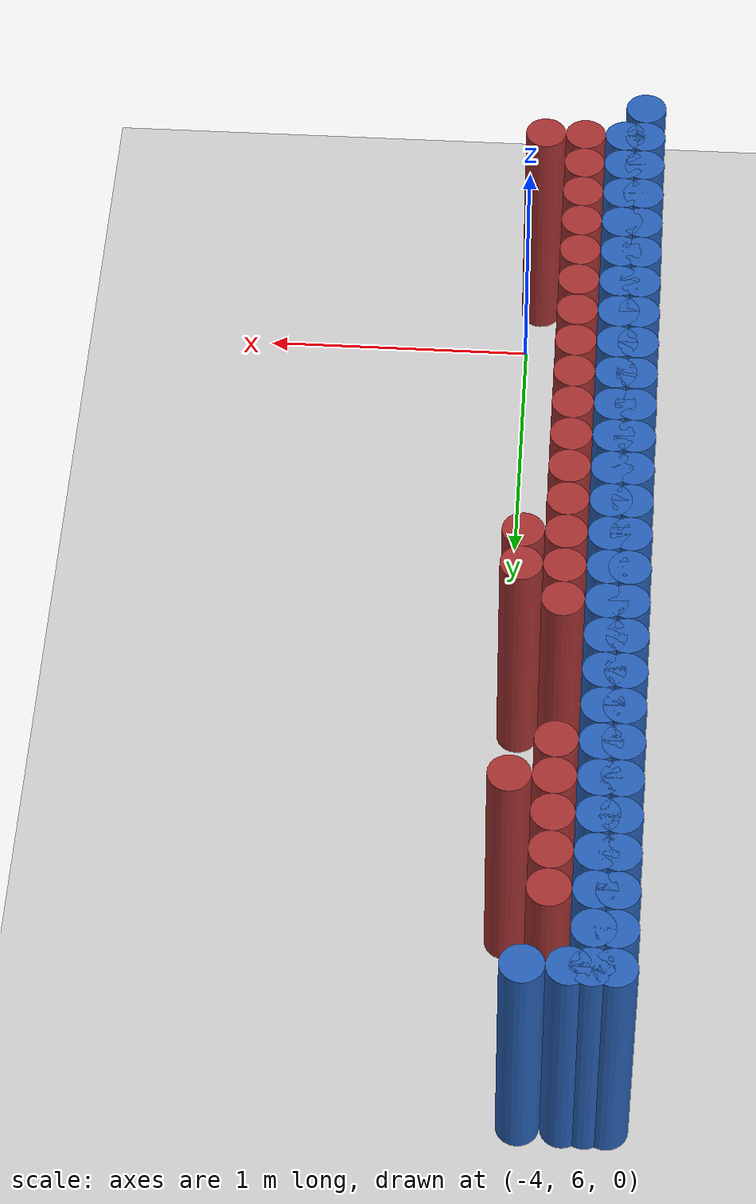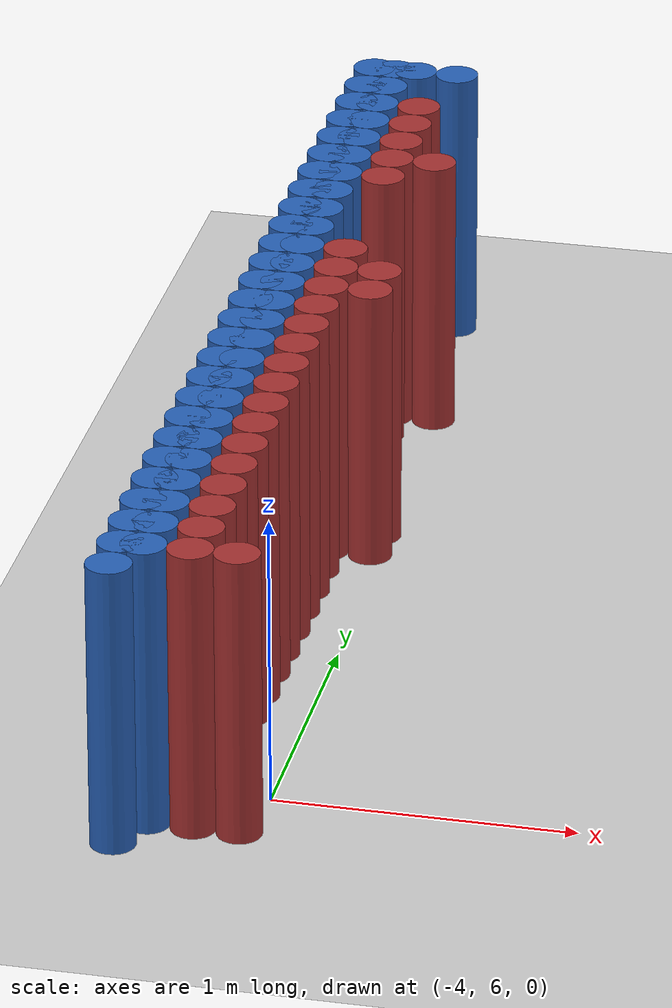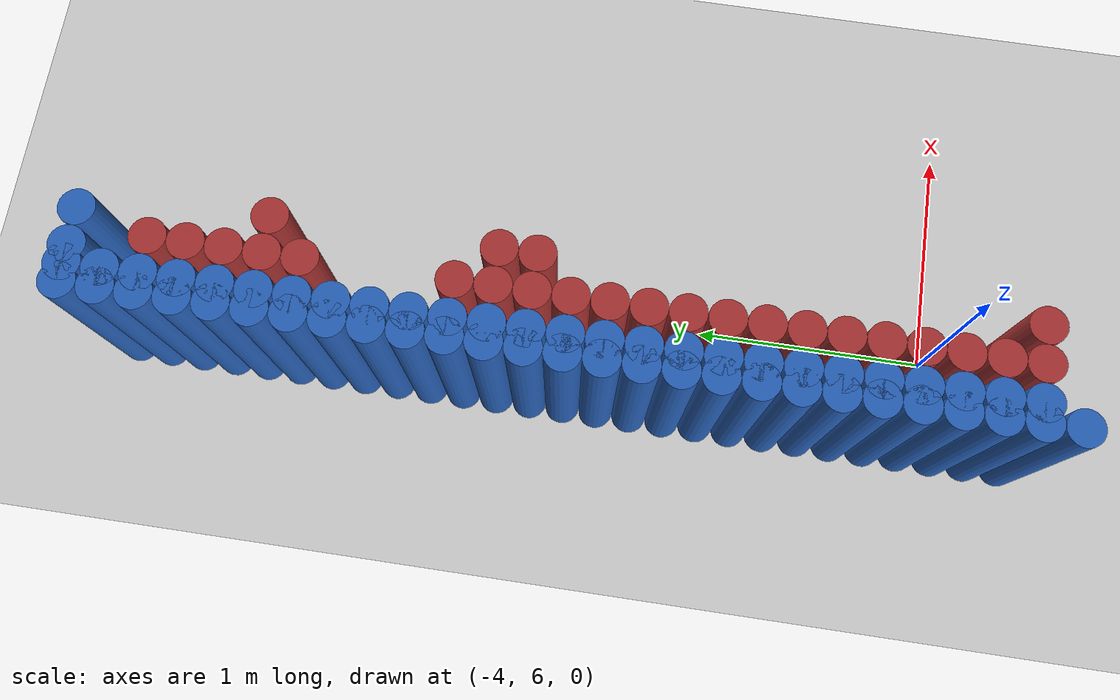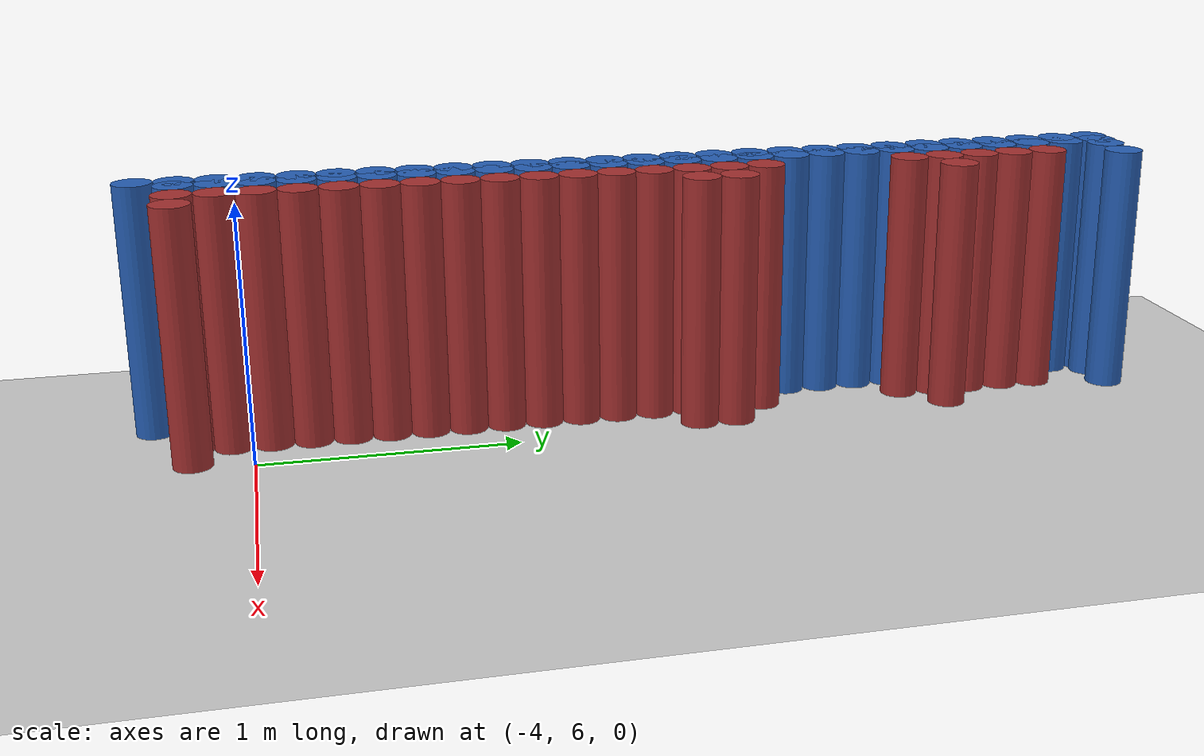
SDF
<sdf version="1.6">
 <world name="barn_world">
  <model name="ground_plane">
   <static>1</static>
   <link name="link">
    <collision name="collision">
     <geometry><plane><normal>0 0 1</normal><size>100 100</size></plane></geometry>
    </collision>
    <visual name="visual">
     <geometry><plane><normal>0 0 1</normal><size>100 100</size></plane></geometry>
     <material>
      <script><uri>file://media/materials/scripts/gazebo.material</uri><name>Gazebo/Grey</name></script>
     </material>
    </visual>
   </link>
  </model>
  <model name="unit_cylinder_130">
   <static>1</static>
   <pose>-4.3500 5.7750 0.5 0 0 0</pose>
   <link name="link">
    <collision name="collision">
     <geometry><cylinder><radius>0.075</radius><length>1</length></cylinder></geometry>
    </collision>
    <visual name="visual">
     <geometry><cylinder><radius>0.075</radius><length>1</length></cylinder></geometry>
     <material><ambient>0.152 0.379 0.72 1</ambient><diffuse>0.152 0.379 0.72 1</diffuse></material>
    </visual>
   </link>
  </model>
  <model name="unit_cylinder_131">
   <static>1</static>
   <pose>-4.3500 5.9250 0.5 0 0 0</pose>
   <link name="link">
    <collision name="collision">
     <geometry><cylinder><radius>0.075</radius><length>1</length></cylinder></geometry>
    </collision>
    <visual name="visual">
     <geometry><cylinder><radius>0.075</radius><length>1</length></cylinder></geometry>
     <material><ambient>0.152 0.379 0.72 1</ambient><diffuse>0.152 0.379 0.72 1</diffuse></material>
    </visual>
   </link>
  </model>
  <model name="unit_cylinder_132">
   <static>1</static>
   <pose>-4.3500 6.0750 0.5 0 0 0</pose>
   <link name="link">
    <collision name="collision">
     <geometry><cylinder><radius>0.075</radius><length>1</length></cylinder></geometry>
    </collision>
    <visual name="visual">
     <geometry><cylinder><radius>0.075</radius><length>1</length></cylinder></geometry>
     <material><ambient>0.152 0.379 0.72 1</ambient><diffuse>0.152 0.379 0.72 1</diffuse></material>
    </visual>
   </link>
  </model>
  <model name="unit_cylinder_133">
   <static>1</static>
   <pose>-4.3500 6.2250 0.5 0 0 0</pose>
   <link name="link">
    <collision name="collision">
     <geometry><cylinder><radius>0.075</radius><length>1</length></cylinder></geometry>
    </collision>
    <visual name="visual">
     <geometry><cylinder><radius>0.075</radius><length>1</length></cylinder></geometry>
     <material><ambient>0.152 0.379 0.72 1</ambient><diffuse>0.152 0.379 0.72 1</diffuse></material>
    </visual>
   </link>
  </model>
  <model name="unit_cylinder_134">
   <static>1</static>
   <pose>-4.3500 6.3750 0.5 0 0 0</pose>
   <link name="link">
    <collision name="collision">
     <geometry><cylinder><radius>0.075</radius><length>1</length></cylinder></geometry>
    </collision>
    <visual name="visual">
     <geometry><cylinder><radius>0.075</radius><length>1</length></cylinder></geometry>
     <material><ambient>0.152 0.379 0.72 1</ambient><diffuse>0.152 0.379 0.72 1</diffuse></material>
    </visual>
   </link>
  </model>
  <model name="unit_cylinder_135">
   <static>1</static>
   <pose>-4.3500 6.5250 0.5 0 0 0</pose>
   <link name="link">
    <collision name="collision">
     <geometry><cylinder><radius>0.075</radius><length>1</length></cylinder></geometry>
    </collision>
    <visual name="visual">
     <geometry><cylinder><radius>0.075</radius><length>1</length></cylinder></geometry>
     <material><ambient>0.152 0.379 0.72 1</ambient><diffuse>0.152 0.379 0.72 1</diffuse></material>
    </visual>
   </link>
  </model>
  <model name="unit_cylinder_136">
   <static>1</static>
   <pose>-4.3500 6.6750 0.5 0 0 0</pose>
   <link name="link">
    <collision name="collision">
     <geometry><cylinder><radius>0.075</radius><length>1</length></cylinder></geometry>
    </collision>
    <visual name="visual">
     <geometry><cylinder><radius>0.075</radius><length>1</length></cylinder></geometry>
     <material><ambient>0.152 0.379 0.72 1</ambient><diffuse>0.152 0.379 0.72 1</diffuse></material>
    </visual>
   </link>
  </model>
  <model name="unit_cylinder_137">
   <static>1</static>
   <pose>-4.3500 6.8250 0.5 0 0 0</pose>
   <link name="link">
    <collision name="collision">
     <geometry><cylinder><radius>0.075</radius><length>1</length></cylinder></geometry>
    </collision>
    <visual name="visual">
     <geometry><cylinder><radius>0.075</radius><length>1</length></cylinder></geometry>
     <material><ambient>0.152 0.379 0.72 1</ambient><diffuse>0.152 0.379 0.72 1</diffuse></material>
    </visual>
   </link>
  </model>
  <model name="unit_cylinder_138">
   <static>1</static>
   <pose>-4.3500 6.9750 0.5 0 0 0</pose>
   <link name="link">
    <collision name="collision">
     <geometry><cylinder><radius>0.075</radius><length>1</length></cylinder></geometry>
    </collision>
    <visual name="visual">
     <geometry><cylinder><radius>0.075</radius><length>1</length></cylinder></geometry>
     <material><ambient>0.152 0.379 0.72 1</ambient><diffuse>0.152 0.379 0.72 1</diffuse></material>
    </visual>
   </link>
  </model>
  <model name="unit_cylinder_139">
   <static>1</static>
   <pose>-4.3500 7.1250 0.5 0 0 0</pose>
   <link name="link">
    <collision name="collision">
     <geometry><cylinder><radius>0.075</radius><length>1</length></cylinder></geometry>
    </collision>
    <visual name="visual">
     <geometry><cylinder><radius>0.075</radius><length>1</length></cylinder></geometry>
     <material><ambient>0.152 0.379 0.72 1</ambient><diffuse>0.152 0.379 0.72 1</diffuse></material>
    </visual>
   </link>
  </model>
  <model name="unit_cylinder_140">
   <static>1</static>
   <pose>-4.3500 7.2750 0.5 0 0 0</pose>
   <link name="link">
    <collision name="collision">
     <geometry><cylinder><radius>0.075</radius><length>1</length></cylinder></geometry>
    </collision>
    <visual name="visual">
     <geometry><cylinder><radius>0.075</radius><length>1</length></cylinder></geometry>
     <material><ambient>0.152 0.379 0.72 1</ambient><diffuse>0.152 0.379 0.72 1</diffuse></material>
    </visual>
   </link>
  </model>
  <model name="unit_cylinder_141">
   <static>1</static>
   <pose>-4.3500 7.4250 0.5 0 0 0</pose>
   <link name="link">
    <collision name="collision">
     <geometry><cylinder><radius>0.075</radius><length>1</length></cylinder></geometry>
    </collision>
    <visual name="visual">
     <geometry><cylinder><radius>0.075</radius><length>1</length></cylinder></geometry>
     <material><ambient>0.152 0.379 0.72 1</ambient><diffuse>0.152 0.379 0.72 1</diffuse></material>
    </visual>
   </link>
  </model>
  <model name="unit_cylinder_142">
   <static>1</static>
   <pose>-4.3500 7.5750 0.5 0 0 0</pose>
   <link name="link">
    <collision name="collision">
     <geometry><cylinder><radius>0.075</radius><length>1</length></cylinder></geometry>
    </collision>
    <visual name="visual">
     <geometry><cylinder><radius>0.075</radius><length>1</length></cylinder></geometry>
     <material><ambient>0.152 0.379 0.72 1</ambient><diffuse>0.152 0.379 0.72 1</diffuse></material>
    </visual>
   </link>
  </model>
  <model name="unit_cylinder_143">
   <static>1</static>
   <pose>-4.3500 7.7250 0.5 0 0 0</pose>
   <link name="link">
    <collision name="collision">
     <geometry><cylinder><radius>0.075</radius><length>1</length></cylinder></geometry>
    </collision>
    <visual name="visual">
     <geometry><cylinder><radius>0.075</radius><length>1</length></cylinder></geometry>
     <material><ambient>0.152 0.379 0.72 1</ambient><diffuse>0.152 0.379 0.72 1</diffuse></material>
    </visual>
   </link>
  </model>
  <model name="unit_cylinder_144">
   <static>1</static>
   <pose>-4.3500 7.8750 0.5 0 0 0</pose>
   <link name="link">
    <collision name="collision">
     <geometry><cylinder><radius>0.075</radius><length>1</length></cylinder></geometry>
    </collision>
    <visual name="visual">
     <geometry><cylinder><radius>0.075</radius><length>1</length></cylinder></geometry>
     <material><ambient>0.152 0.379 0.72 1</ambient><diffuse>0.152 0.379 0.72 1</diffuse></material>
    </visual>
   </link>
  </model>
  <model name="unit_cylinder_145">
   <static>1</static>
   <pose>-4.3500 8.0250 0.5 0 0 0</pose>
   <link name="link">
    <collision name="collision">
     <geometry><cylinder><radius>0.075</radius><length>1</length></cylinder></geometry>
    </collision>
    <visual name="visual">
     <geometry><cylinder><radius>0.075</radius><length>1</length></cylinder></geometry>
     <material><ambient>0.152 0.379 0.72 1</ambient><diffuse>0.152 0.379 0.72 1</diffuse></material>
    </visual>
   </link>
  </model>
  <model name="unit_cylinder_146">
   <static>1</static>
   <pose>-4.3500 8.1750 0.5 0 0 0</pose>
   <link name="link">
    <collision name="collision">
     <geometry><cylinder><radius>0.075</radius><length>1</length></cylinder></geometry>
    </collision>
    <visual name="visual">
     <geometry><cylinder><radius>0.075</radius><length>1</length></cylinder></geometry>
     <material><ambient>0.152 0.379 0.72 1</ambient><diffuse>0.152 0.379 0.72 1</diffuse></material>
    </visual>
   </link>
  </model>
  <model name="unit_cylinder_147">
   <static>1</static>
   <pose>-4.3500 8.3250 0.5 0 0 0</pose>
   <link name="link">
    <collision name="collision">
     <geometry><cylinder><radius>0.075</radius><length>1</length></cylinder></geometry>
    </collision>
    <visual name="visual">
     <geometry><cylinder><radius>0.075</radius><length>1</length></cylinder></geometry>
     <material><ambient>0.152 0.379 0.72 1</ambient><diffuse>0.152 0.379 0.72 1</diffuse></material>
    </visual>
   </link>
  </model>
  <model name="unit_cylinder_148">
   <static>1</static>
   <pose>-4.3500 8.4750 0.5 0 0 0</pose>
   <link name="link">
    <collision name="collision">
     <geometry><cylinder><radius>0.075</radius><length>1</length></cylinder></geometry>
    </collision>
    <visual name="visual">
     <geometry><cylinder><radius>0.075</radius><length>1</length></cylinder></geometry>
     <material><ambient>0.152 0.379 0.72 1</ambient><diffuse>0.152 0.379 0.72 1</diffuse></material>
    </visual>
   </link>
  </model>
  <model name="unit_cylinder_149">
   <static>1</static>
   <pose>-4.3500 8.6250 0.5 0 0 0</pose>
   <link name="link">
    <collision name="collision">
     <geometry><cylinder><radius>0.075</radius><length>1</length></cylinder></geometry>
    </collision>
    <visual name="visual">
     <geometry><cylinder><radius>0.075</radius><length>1</length></cylinder></geometry>
     <material><ambient>0.152 0.379 0.72 1</ambient><diffuse>0.152 0.379 0.72 1</diffuse></material>
    </visual>
   </link>
  </model>
  <model name="unit_cylinder_150">
   <static>1</static>
   <pose>-4.3500 8.7750 0.5 0 0 0</pose>
   <link name="link">
    <collision name="collision">
     <geometry><cylinder><radius>0.075</radius><length>1</length></cylinder></geometry>
    </collision>
    <visual name="visual">
     <geometry><cylinder><radius>0.075</radius><length>1</length></cylinder></geometry>
     <material><ambient>0.152 0.379 0.72 1</ambient><diffuse>0.152 0.379 0.72 1</diffuse></material>
    </visual>
   </link>
  </model>
  <model name="unit_cylinder_151">
   <static>1</static>
   <pose>-4.3500 8.9250 0.5 0 0 0</pose>
   <link name="link">
    <collision name="collision">
     <geometry><cylinder><radius>0.075</radius><length>1</length></cylinder></geometry>
    </collision>
    <visual name="visual">
     <geometry><cylinder><radius>0.075</radius><length>1</length></cylinder></geometry>
     <material><ambient>0.152 0.379 0.72 1</ambient><diffuse>0.152 0.379 0.72 1</diffuse></material>
    </visual>
   </link>
  </model>
  <model name="unit_cylinder_152">
   <static>1</static>
   <pose>-4.3500 9.0750 0.5 0 0 0</pose>
   <link name="link">
    <collision name="collision">
     <geometry><cylinder><radius>0.075</radius><length>1</length></cylinder></geometry>
    </collision>
    <visual name="visual">
     <geometry><cylinder><radius>0.075</radius><length>1</length></cylinder></geometry>
     <material><ambient>0.152 0.379 0.72 1</ambient><diffuse>0.152 0.379 0.72 1</diffuse></material>
    </visual>
   </link>
  </model>
  <model name="unit_cylinder_153">
   <static>1</static>
   <pose>-4.3500 9.2250 0.5 0 0 0</pose>
   <link name="link">
    <collision name="collision">
     <geometry><cylinder><radius>0.075</radius><length>1</length></cylinder></geometry>
    </collision>
    <visual name="visual">
     <geometry><cylinder><radius>0.075</radius><length>1</length></cylinder></geometry>
     <material><ambient>0.152 0.379 0.72 1</ambient><diffuse>0.152 0.379 0.72 1</diffuse></material>
    </visual>
   </link>
  </model>
  <model name="unit_cylinder_154">
   <static>1</static>
   <pose>-4.3500 9.3750 0.5 0 0 0</pose>
   <link name="link">
    <collision name="collision">
     <geometry><cylinder><radius>0.075</radius><length>1</length></cylinder></geometry>
    </collision>
    <visual name="visual">
     <geometry><cylinder><radius>0.075</radius><length>1</length></cylinder></geometry>
     <material><ambient>0.152 0.379 0.72 1</ambient><diffuse>0.152 0.379 0.72 1</diffuse></material>
    </visual>
   </link>
  </model>
  <model name="unit_cylinder_155">
   <static>1</static>
   <pose>-4.3500 9.5250 0.5 0 0 0</pose>
   <link name="link">
    <collision name="collision">
     <geometry><cylinder><radius>0.075</radius><length>1</length></cylinder></geometry>
    </collision>
    <visual name="visual">
     <geometry><cylinder><radius>0.075</radius><length>1</length></cylinder></geometry>
     <material><ambient>0.152 0.379 0.72 1</ambient><diffuse>0.152 0.379 0.72 1</diffuse></material>
    </visual>
   </link>
  </model>
  <model name="unit_cylinder_160">
   <static>1</static>
   <pose>-4.2000 5.7750 0.5 0 0 0</pose>
   <link name="link">
    <collision name="collision">
     <geometry><cylinder><radius>0.075</radius><length>1</length></cylinder></geometry>
    </collision>
    <visual name="visual">
     <geometry><cylinder><radius>0.075</radius><length>1</length></cylinder></geometry>
     <material><ambient>0.648 0.192 0.192 1</ambient><diffuse>0.648 0.192 0.192 1</diffuse></material>
    </visual>
   </link>
  </model>
  <model name="unit_cylinder_161">
   <static>1</static>
   <pose>-4.2000 5.9250 0.5 0 0 0</pose>
   <link name="link">
    <collision name="collision">
     <geometry><cylinder><radius>0.075</radius><length>1</length></cylinder></geometry>
    </collision>
    <visual name="visual">
     <geometry><cylinder><radius>0.075</radius><length>1</length></cylinder></geometry>
     <material><ambient>0.648 0.192 0.192 1</ambient><diffuse>0.648 0.192 0.192 1</diffuse></material>
    </visual>
   </link>
  </model>
  <model name="unit_cylinder_162">
   <static>1</static>
   <pose>-4.2000 6.0750 0.5 0 0 0</pose>
   <link name="link">
    <collision name="collision">
     <geometry><cylinder><radius>0.075</radius><length>1</length></cylinder></geometry>
    </collision>
    <visual name="visual">
     <geometry><cylinder><radius>0.075</radius><length>1</length></cylinder></geometry>
     <material><ambient>0.648 0.192 0.192 1</ambient><diffuse>0.648 0.192 0.192 1</diffuse></material>
    </visual>
   </link>
  </model>
  <model name="unit_cylinder_163">
   <static>1</static>
   <pose>-4.2000 6.2250 0.5 0 0 0</pose>
   <link name="link">
    <collision name="collision">
     <geometry><cylinder><radius>0.075</radius><length>1</length></cylinder></geometry>
    </collision>
    <visual name="visual">
     <geometry><cylinder><radius>0.075</radius><length>1</length></cylinder></geometry>
     <material><ambient>0.648 0.192 0.192 1</ambient><diffuse>0.648 0.192 0.192 1</diffuse></material>
    </visual>
   </link>
  </model>
  <model name="unit_cylinder_164">
   <static>1</static>
   <pose>-4.2000 6.3750 0.5 0 0 0</pose>
   <link name="link">
    <collision name="collision">
     <geometry><cylinder><radius>0.075</radius><length>1</length></cylinder></geometry>
    </collision>
    <visual name="visual">
     <geometry><cylinder><radius>0.075</radius><length>1</length></cylinder></geometry>
     <material><ambient>0.648 0.192 0.192 1</ambient><diffuse>0.648 0.192 0.192 1</diffuse></material>
    </visual>
   </link>
  </model>
  <model name="unit_cylinder_165">
   <static>1</static>
   <pose>-4.2000 6.5250 0.5 0 0 0</pose>
   <link name="link">
    <collision name="collision">
     <geometry><cylinder><radius>0.075</radius><length>1</length></cylinder></geometry>
    </collision>
    <visual name="visual">
     <geometry><cylinder><radius>0.075</radius><length>1</length></cylinder></geometry>
     <material><ambient>0.648 0.192 0.192 1</ambient><diffuse>0.648 0.192 0.192 1</diffuse></material>
    </visual>
   </link>
  </model>
  <model name="unit_cylinder_166">
   <static>1</static>
   <pose>-4.2000 6.6750 0.5 0 0 0</pose>
   <link name="link">
    <collision name="collision">
     <geometry><cylinder><radius>0.075</radius><length>1</length></cylinder></geometry>
    </collision>
    <visual name="visual">
     <geometry><cylinder><radius>0.075</radius><length>1</length></cylinder></geometry>
     <material><ambient>0.648 0.192 0.192 1</ambient><diffuse>0.648 0.192 0.192 1</diffuse></material>
    </visual>
   </link>
  </model>
  <model name="unit_cylinder_167">
   <static>1</static>
   <pose>-4.2000 6.8250 0.5 0 0 0</pose>
   <link name="link">
    <collision name="collision">
     <geometry><cylinder><radius>0.075</radius><length>1</length></cylinder></geometry>
    </collision>
    <visual name="visual">
     <geometry><cylinder><radius>0.075</radius><length>1</length></cylinder></geometry>
     <material><ambient>0.648 0.192 0.192 1</ambient><diffuse>0.648 0.192 0.192 1</diffuse></material>
    </visual>
   </link>
  </model>
  <model name="unit_cylinder_168">
   <static>1</static>
   <pose>-4.2000 6.9750 0.5 0 0 0</pose>
   <link name="link">
    <collision name="collision">
     <geometry><cylinder><radius>0.075</radius><length>1</length></cylinder></geometry>
    </collision>
    <visual name="visual">
     <geometry><cylinder><radius>0.075</radius><length>1</length></cylinder></geometry>
     <material><ambient>0.648 0.192 0.192 1</ambient><diffuse>0.648 0.192 0.192 1</diffuse></material>
    </visual>
   </link>
  </model>
  <model name="unit_cylinder_169">
   <static>1</static>
   <pose>-4.2000 7.1250 0.5 0 0 0</pose>
   <link name="link">
    <collision name="collision">
     <geometry><cylinder><radius>0.075</radius><length>1</length></cylinder></geometry>
    </collision>
    <visual name="visual">
     <geometry><cylinder><radius>0.075</radius><length>1</length></cylinder></geometry>
     <material><ambient>0.648 0.192 0.192 1</ambient><diffuse>0.648 0.192 0.192 1</diffuse></material>
    </visual>
   </link>
  </model>
  <model name="unit_cylinder_170">
   <static>1</static>
   <pose>-4.2000 7.2750 0.5 0 0 0</pose>
   <link name="link">
    <collision name="collision">
     <geometry><cylinder><radius>0.075</radius><length>1</length></cylinder></geometry>
    </collision>
    <visual name="visual">
     <geometry><cylinder><radius>0.075</radius><length>1</length></cylinder></geometry>
     <material><ambient>0.648 0.192 0.192 1</ambient><diffuse>0.648 0.192 0.192 1</diffuse></material>
    </visual>
   </link>
  </model>
  <model name="unit_cylinder_171">
   <static>1</static>
   <pose>-4.2000 7.4250 0.5 0 0 0</pose>
   <link name="link">
    <collision name="collision">
     <geometry><cylinder><radius>0.075</radius><length>1</length></cylinder></geometry>
    </collision>
    <visual name="visual">
     <geometry><cylinder><radius>0.075</radius><length>1</length></cylinder></geometry>
     <material><ambient>0.648 0.192 0.192 1</ambient><diffuse>0.648 0.192 0.192 1</diffuse></material>
    </visual>
   </link>
  </model>
  <model name="unit_cylinder_172">
   <static>1</static>
   <pose>-4.2000 7.5750 0.5 0 0 0</pose>
   <link name="link">
    <collision name="collision">
     <geometry><cylinder><radius>0.075</radius><length>1</length></cylinder></geometry>
    </collision>
    <visual name="visual">
     <geometry><cylinder><radius>0.075</radius><length>1</length></cylinder></geometry>
     <material><ambient>0.648 0.192 0.192 1</ambient><diffuse>0.648 0.192 0.192 1</diffuse></material>
    </visual>
   </link>
  </model>
  <model name="unit_cylinder_173">
   <static>1</static>
   <pose>-4.2000 7.7250 0.5 0 0 0</pose>
   <link name="link">
    <collision name="collision">
     <geometry><cylinder><radius>0.075</radius><length>1</length></cylinder></geometry>
    </collision>
    <visual name="visual">
     <geometry><cylinder><radius>0.075</radius><length>1</length></cylinder></geometry>
     <material><ambient>0.648 0.192 0.192 1</ambient><diffuse>0.648 0.192 0.192 1</diffuse></material>
    </visual>
   </link>
  </model>
  <model name="unit_cylinder_174">
   <static>1</static>
   <pose>-4.2000 7.8750 0.5 0 0 0</pose>
   <link name="link">
    <collision name="collision">
     <geometry><cylinder><radius>0.075</radius><length>1</length></cylinder></geometry>
    </collision>
    <visual name="visual">
     <geometry><cylinder><radius>0.075</radius><length>1</length></cylinder></geometry>
     <material><ambient>0.648 0.192 0.192 1</ambient><diffuse>0.648 0.192 0.192 1</diffuse></material>
    </visual>
   </link>
  </model>
  <model name="unit_cylinder_175">
   <static>1</static>
   <pose>-4.2000 8.0250 0.5 0 0 0</pose>
   <link name="link">
    <collision name="collision">
     <geometry><cylinder><radius>0.075</radius><length>1</length></cylinder></geometry>
    </collision>
    <visual name="visual">
     <geometry><cylinder><radius>0.075</radius><length>1</length></cylinder></geometry>
     <material><ambient>0.648 0.192 0.192 1</ambient><diffuse>0.648 0.192 0.192 1</diffuse></material>
    </visual>
   </link>
  </model>
  <model name="unit_cylinder_176">
   <static>1</static>
   <pose>-4.2000 8.6250 0.5 0 0 0</pose>
   <link name="link">
    <collision name="collision">
     <geometry><cylinder><radius>0.075</radius><length>1</length></cylinder></geometry>
    </collision>
    <visual name="visual">
     <geometry><cylinder><radius>0.075</radius><length>1</length></cylinder></geometry>
     <material><ambient>0.648 0.192 0.192 1</ambient><diffuse>0.648 0.192 0.192 1</diffuse></material>
    </visual>
   </link>
  </model>
  <model name="unit_cylinder_177">
   <static>1</static>
   <pose>-4.2000 8.7750 0.5 0 0 0</pose>
   <link name="link">
    <collision name="collision">
     <geometry><cylinder><radius>0.075</radius><length>1</length></cylinder></geometry>
    </collision>
    <visual name="visual">
     <geometry><cylinder><radius>0.075</radius><length>1</length></cylinder></geometry>
     <material><ambient>0.648 0.192 0.192 1</ambient><diffuse>0.648 0.192 0.192 1</diffuse></material>
    </visual>
   </link>
  </model>
  <model name="unit_cylinder_178">
   <static>1</static>
   <pose>-4.2000 8.9250 0.5 0 0 0</pose>
   <link name="link">
    <collision name="collision">
     <geometry><cylinder><radius>0.075</radius><length>1</length></cylinder></geometry>
    </collision>
    <visual name="visual">
     <geometry><cylinder><radius>0.075</radius><length>1</length></cylinder></geometry>
     <material><ambient>0.648 0.192 0.192 1</ambient><diffuse>0.648 0.192 0.192 1</diffuse></material>
    </visual>
   </link>
  </model>
  <model name="unit_cylinder_179">
   <static>1</static>
   <pose>-4.2000 9.0750 0.5 0 0 0</pose>
   <link name="link">
    <collision name="collision">
     <geometry><cylinder><radius>0.075</radius><length>1</length></cylinder></geometry>
    </collision>
    <visual name="visual">
     <geometry><cylinder><radius>0.075</radius><length>1</length></cylinder></geometry>
     <material><ambient>0.648 0.192 0.192 1</ambient><diffuse>0.648 0.192 0.192 1</diffuse></material>
    </visual>
   </link>
  </model>
  <model name="unit_cylinder_180">
   <static>1</static>
   <pose>-4.2000 9.2250 0.5 0 0 0</pose>
   <link name="link">
    <collision name="collision">
     <geometry><cylinder><radius>0.075</radius><length>1</length></cylinder></geometry>
    </collision>
    <visual name="visual">
     <geometry><cylinder><radius>0.075</radius><length>1</length></cylinder></geometry>
     <material><ambient>0.648 0.192 0.192 1</ambient><diffuse>0.648 0.192 0.192 1</diffuse></material>
    </visual>
   </link>
  </model>
  <model name="unit_cylinder_181">
   <static>1</static>
   <pose>-4.0500 5.7750 0.5 0 0 0</pose>
   <link name="link">
    <collision name="collision">
     <geometry><cylinder><radius>0.075</radius><length>1</length></cylinder></geometry>
    </collision>
    <visual name="visual">
     <geometry><cylinder><radius>0.075</radius><length>1</length></cylinder></geometry>
     <material><ambient>0.648 0.192 0.192 1</ambient><diffuse>0.648 0.192 0.192 1</diffuse></material>
    </visual>
   </link>
  </model>
  <model name="unit_cylinder_182">
   <static>1</static>
   <pose>-4.0500 7.7250 0.5 0 0 0</pose>
   <link name="link">
    <collision name="collision">
     <geometry><cylinder><radius>0.075</radius><length>1</length></cylinder></geometry>
    </collision>
    <visual name="visual">
     <geometry><cylinder><radius>0.075</radius><length>1</length></cylinder></geometry>
     <material><ambient>0.648 0.192 0.192 1</ambient><diffuse>0.648 0.192 0.192 1</diffuse></material>
    </visual>
   </link>
  </model>
  <model name="unit_cylinder_183">
   <static>1</static>
   <pose>-4.0500 7.8750 0.5 0 0 0</pose>
   <link name="link">
    <collision name="collision">
     <geometry><cylinder><radius>0.075</radius><length>1</length></cylinder></geometry>
    </collision>
    <visual name="visual">
     <geometry><cylinder><radius>0.075</radius><length>1</length></cylinder></geometry>
     <material><ambient>0.648 0.192 0.192 1</ambient><diffuse>0.648 0.192 0.192 1</diffuse></material>
    </visual>
   </link>
  </model>
  <model name="unit_cylinder_184">
   <static>1</static>
   <pose>-4.0500 8.7750 0.5 0 0 0</pose>
   <link name="link">
    <collision name="collision">
     <geometry><cylinder><radius>0.075</radius><length>1</length></cylinder></geometry>
    </collision>
    <visual name="visual">
     <geometry><cylinder><radius>0.075</radius><length>1</length></cylinder></geometry>
     <material><ambient>0.648 0.192 0.192 1</ambient><diffuse>0.648 0.192 0.192 1</diffuse></material>
    </visual>
   </link>
  </model>
  <model name="unit_cylinder_339">
   <static>1</static>
   <pose>-4.1250 9.5250 0.5 0 0 0</pose>
   <link name="link">
    <collision name="collision">
     <geometry><cylinder><radius>0.075</radius><length>1</length></cylinder></geometry>
    </collision>
    <visual name="visual">
     <geometry><cylinder><radius>0.075</radius><length>1</length></cylinder></geometry>
     <material><ambient>0.152 0.379 0.72 1</ambient><diffuse>0.152 0.379 0.72 1</diffuse></material>
    </visual>
   </link>
  </model>
  <model name="unit_cylinder_340">
   <static>1</static>
   <pose>-4.2750 9.5250 0.5 0 0 0</pose>
   <link name="link">
    <collision name="collision">
     <geometry><cylinder><radius>0.075</radius><length>1</length></cylinder></geometry>
    </collision>
    <visual name="visual">
     <geometry><cylinder><radius>0.075</radius><length>1</length></cylinder></geometry>
     <material><ambient>0.152 0.379 0.72 1</ambient><diffuse>0.152 0.379 0.72 1</diffuse></material>
    </visual>
   </link>
  </model>
  <model name="unit_cylinder_341">
   <static>1</static>
   <pose>-4.4250 9.5250 0.5 0 0 0</pose>
   <link name="link">
    <collision name="collision">
     <geometry><cylinder><radius>0.075</radius><length>1</length></cylinder></geometry>
    </collision>
    <visual name="visual">
     <geometry><cylinder><radius>0.075</radius><length>1</length></cylinder></geometry>
     <material><ambient>0.152 0.379 0.72 1</ambient><diffuse>0.152 0.379 0.72 1</diffuse></material>
    </visual>
   </link>
  </model>
  <model name="unit_cylinder_349">
   <static>1</static>
   <pose>-4.4250 5.6250 0.5 0 0 0</pose>
   <link name="link">
    <collision name="collision">
     <geometry><cylinder><radius>0.075</radius><length>1</length></cylinder></geometry>
    </collision>
    <visual name="visual">
     <geometry><cylinder><radius>0.075</radius><length>1</length></cylinder></geometry>
     <material><ambient>0.152 0.379 0.72 1</ambient><diffuse>0.152 0.379 0.72 1</diffuse></material>
    </visual>
   </link>
  </model>
  <model name="unit_cylinder_351">
   <static>1</static>
   <pose>-4.4250 5.7750 0.5 0 0 0</pose>
   <link name="link">
    <collision name="collision">
     <geometry><cylinder><radius>0.075</radius><length>1</length></cylinder></geometry>
    </collision>
    <visual name="visual">
     <geometry><cylinder><radius>0.075</radius><length>1</length></cylinder></geometry>
     <material><ambient>0.152 0.379 0.72 1</ambient><diffuse>0.152 0.379 0.72 1</diffuse></material>
    </visual>
   </link>
  </model>
  <model name="unit_cylinder_353">
   <static>1</static>
   <pose>-4.4250 5.9250 0.5 0 0 0</pose>
   <link name="link">
    <collision name="collision">
     <geometry><cylinder><radius>0.075</radius><length>1</length></cylinder></geometry>
    </collision>
    <visual name="visual">
     <geometry><cylinder><radius>0.075</radius><length>1</length></cylinder></geometry>
     <material><ambient>0.152 0.379 0.72 1</ambient><diffuse>0.152 0.379 0.72 1</diffuse></material>
    </visual>
   </link>
  </model>
  <model name="unit_cylinder_355">
   <static>1</static>
   <pose>-4.4250 6.0750 0.5 0 0 0</pose>
   <link name="link">
    <collision name="collision">
     <geometry><cylinder><radius>0.075</radius><length>1</length></cylinder></geometry>
    </collision>
    <visual name="visual">
     <geometry><cylinder><radius>0.075</radius><length>1</length></cylinder></geometry>
     <material><ambient>0.152 0.379 0.72 1</ambient><diffuse>0.152 0.379 0.72 1</diffuse></material>
    </visual>
   </link>
  </model>
  <model name="unit_cylinder_357">
   <static>1</static>
   <pose>-4.4250 6.2250 0.5 0 0 0</pose>
   <link name="link">
    <collision name="collision">
     <geometry><cylinder><radius>0.075</radius><length>1</length></cylinder></geometry>
    </collision>
    <visual name="visual">
     <geometry><cylinder><radius>0.075</radius><length>1</length></cylinder></geometry>
     <material><ambient>0.152 0.379 0.72 1</ambient><diffuse>0.152 0.379 0.72 1</diffuse></material>
    </visual>
   </link>
  </model>
  <model name="unit_cylinder_359">
   <static>1</static>
   <pose>-4.4250 6.3750 0.5 0 0 0</pose>
   <link name="link">
    <collision name="collision">
     <geometry><cylinder><radius>0.075</radius><length>1</length></cylinder></geometry>
    </collision>
    <visual name="visual">
     <geometry><cylinder><radius>0.075</radius><length>1</length></cylinder></geometry>
     <material><ambient>0.152 0.379 0.72 1</ambient><diffuse>0.152 0.379 0.72 1</diffuse></material>
    </visual>
   </link>
  </model>
  <model name="unit_cylinder_361">
   <static>1</static>
   <pose>-4.4250 6.5250 0.5 0 0 0</pose>
   <link name="link">
    <collision name="collision">
     <geometry><cylinder><radius>0.075</radius><length>1</length></cylinder></geometry>
    </collision>
    <visual name="visual">
     <geometry><cylinder><radius>0.075</radius><length>1</length></cylinder></geometry>
     <material><ambient>0.152 0.379 0.72 1</ambient><diffuse>0.152 0.379 0.72 1</diffuse></material>
    </visual>
   </link>
  </model>
  <model name="unit_cylinder_363">
   <static>1</static>
   <pose>-4.4250 6.6750 0.5 0 0 0</pose>
   <link name="link">
    <collision name="collision">
     <geometry><cylinder><radius>0.075</radius><length>1</length></cylinder></geometry>
    </collision>
    <visual name="visual">
     <geometry><cylinder><radius>0.075</radius><length>1</length></cylinder></geometry>
     <material><ambient>0.152 0.379 0.72 1</ambient><diffuse>0.152 0.379 0.72 1</diffuse></material>
    </visual>
   </link>
  </model>
  <model name="unit_cylinder_365">
   <static>1</static>
   <pose>-4.4250 6.8250 0.5 0 0 0</pose>
   <link name="link">
    <collision name="collision">
     <geometry><cylinder><radius>0.075</radius><length>1</length></cylinder></geometry>
    </collision>
    <visual name="visual">
     <geometry><cylinder><radius>0.075</radius><length>1</length></cylinder></geometry>
     <material><ambient>0.152 0.379 0.72 1</ambient><diffuse>0.152 0.379 0.72 1</diffuse></material>
    </visual>
   </link>
  </model>
  <model name="unit_cylinder_367">
   <static>1</static>
   <pose>-4.4250 6.9750 0.5 0 0 0</pose>
   <link name="link">
    <collision name="collision">
     <geometry><cylinder><radius>0.075</radius><length>1</length></cylinder></geometry>
    </collision>
    <visual name="visual">
     <geometry><cylinder><radius>0.075</radius><length>1</length></cylinder></geometry>
     <material><ambient>0.152 0.379 0.72 1</ambient><diffuse>0.152 0.379 0.72 1</diffuse></material>
    </visual>
   </link>
  </model>
  <model name="unit_cylinder_369">
   <static>1</static>
   <pose>-4.4250 7.1250 0.5 0 0 0</pose>
   <link name="link">
    <collision name="collision">
     <geometry><cylinder><radius>0.075</radius><length>1</length></cylinder></geometry>
    </collision>
    <visual name="visual">
     <geometry><cylinder><radius>0.075</radius><length>1</length></cylinder></geometry>
     <material><ambient>0.152 0.379 0.72 1</ambient><diffuse>0.152 0.379 0.72 1</diffuse></material>
    </visual>
   </link>
  </model>
  <model name="unit_cylinder_371">
   <static>1</static>
   <pose>-4.4250 7.2750 0.5 0 0 0</pose>
   <link name="link">
    <collision name="collision">
     <geometry><cylinder><radius>0.075</radius><length>1</length></cylinder></geometry>
    </collision>
    <visual name="visual">
     <geometry><cylinder><radius>0.075</radius><length>1</length></cylinder></geometry>
     <material><ambient>0.152 0.379 0.72 1</ambient><diffuse>0.152 0.379 0.72 1</diffuse></material>
    </visual>
   </link>
  </model>
  <model name="unit_cylinder_373">
   <static>1</static>
   <pose>-4.4250 7.4250 0.5 0 0 0</pose>
   <link name="link">
    <collision name="collision">
     <geometry><cylinder><radius>0.075</radius><length>1</length></cylinder></geometry>
    </collision>
    <visual name="visual">
     <geometry><cylinder><radius>0.075</radius><length>1</length></cylinder></geometry>
     <material><ambient>0.152 0.379 0.72 1</ambient><diffuse>0.152 0.379 0.72 1</diffuse></material>
    </visual>
   </link>
  </model>
  <model name="unit_cylinder_375">
   <static>1</static>
   <pose>-4.4250 7.5750 0.5 0 0 0</pose>
   <link name="link">
    <collision name="collision">
     <geometry><cylinder><radius>0.075</radius><length>1</length></cylinder></geometry>
    </collision>
    <visual name="visual">
     <geometry><cylinder><radius>0.075</radius><length>1</length></cylinder></geometry>
     <material><ambient>0.152 0.379 0.72 1</ambient><diffuse>0.152 0.379 0.72 1</diffuse></material>
    </visual>
   </link>
  </model>
  <model name="unit_cylinder_377">
   <static>1</static>
   <pose>-4.4250 7.7250 0.5 0 0 0</pose>
   <link name="link">
    <collision name="collision">
     <geometry><cylinder><radius>0.075</radius><length>1</length></cylinder></geometry>
    </collision>
    <visual name="visual">
     <geometry><cylinder><radius>0.075</radius><length>1</length></cylinder></geometry>
     <material><ambient>0.152 0.379 0.72 1</ambient><diffuse>0.152 0.379 0.72 1</diffuse></material>
    </visual>
   </link>
  </model>
  <model name="unit_cylinder_379">
   <static>1</static>
   <pose>-4.4250 7.8750 0.5 0 0 0</pose>
   <link name="link">
    <collision name="collision">
     <geometry><cylinder><radius>0.075</radius><length>1</length></cylinder></geometry>
    </collision>
    <visual name="visual">
     <geometry><cylinder><radius>0.075</radius><length>1</length></cylinder></geometry>
     <material><ambient>0.152 0.379 0.72 1</ambient><diffuse>0.152 0.379 0.72 1</diffuse></material>
    </visual>
   </link>
  </model>
  <model name="unit_cylinder_381">
   <static>1</static>
   <pose>-4.4250 8.0250 0.5 0 0 0</pose>
   <link name="link">
    <collision name="collision">
     <geometry><cylinder><radius>0.075</radius><length>1</length></cylinder></geometry>
    </collision>
    <visual name="visual">
     <geometry><cylinder><radius>0.075</radius><length>1</length></cylinder></geometry>
     <material><ambient>0.152 0.379 0.72 1</ambient><diffuse>0.152 0.379 0.72 1</diffuse></material>
    </visual>
   </link>
  </model>
  <model name="unit_cylinder_383">
   <static>1</static>
   <pose>-4.4250 8.1750 0.5 0 0 0</pose>
   <link name="link">
    <collision name="collision">
     <geometry><cylinder><radius>0.075</radius><length>1</length></cylinder></geometry>
    </collision>
    <visual name="visual">
     <geometry><cylinder><radius>0.075</radius><length>1</length></cylinder></geometry>
     <material><ambient>0.152 0.379 0.72 1</ambient><diffuse>0.152 0.379 0.72 1</diffuse></material>
    </visual>
   </link>
  </model>
  <model name="unit_cylinder_385">
   <static>1</static>
   <pose>-4.4250 8.3250 0.5 0 0 0</pose>
   <link name="link">
    <collision name="collision">
     <geometry><cylinder><radius>0.075</radius><length>1</length></cylinder></geometry>
    </collision>
    <visual name="visual">
     <geometry><cylinder><radius>0.075</radius><length>1</length></cylinder></geometry>
     <material><ambient>0.152 0.379 0.72 1</ambient><diffuse>0.152 0.379 0.72 1</diffuse></material>
    </visual>
   </link>
  </model>
  <model name="unit_cylinder_387">
   <static>1</static>
   <pose>-4.4250 8.4750 0.5 0 0 0</pose>
   <link name="link">
    <collision name="collision">
     <geometry><cylinder><radius>0.075</radius><length>1</length></cylinder></geometry>
    </collision>
    <visual name="visual">
     <geometry><cylinder><radius>0.075</radius><length>1</length></cylinder></geometry>
     <material><ambient>0.152 0.379 0.72 1</ambient><diffuse>0.152 0.379 0.72 1</diffuse></material>
    </visual>
   </link>
  </model>
  <model name="unit_cylinder_389">
   <static>1</static>
   <pose>-4.4250 8.6250 0.5 0 0 0</pose>
   <link name="link">
    <collision name="collision">
     <geometry><cylinder><radius>0.075</radius><length>1</length></cylinder></geometry>
    </collision>
    <visual name="visual">
     <geometry><cylinder><radius>0.075</radius><length>1</length></cylinder></geometry>
     <material><ambient>0.152 0.379 0.72 1</ambient><diffuse>0.152 0.379 0.72 1</diffuse></material>
    </visual>
   </link>
  </model>
  <model name="unit_cylinder_391">
   <static>1</static>
   <pose>-4.4250 8.7750 0.5 0 0 0</pose>
   <link name="link">
    <collision name="collision">
     <geometry><cylinder><radius>0.075</radius><length>1</length></cylinder></geometry>
    </collision>
    <visual name="visual">
     <geometry><cylinder><radius>0.075</radius><length>1</length></cylinder></geometry>
     <material><ambient>0.152 0.379 0.72 1</ambient><diffuse>0.152 0.379 0.72 1</diffuse></material>
    </visual>
   </link>
  </model>
  <model name="unit_cylinder_393">
   <static>1</static>
   <pose>-4.4250 8.9250 0.5 0 0 0</pose>
   <link name="link">
    <collision name="collision">
     <geometry><cylinder><radius>0.075</radius><length>1</length></cylinder></geometry>
    </collision>
    <visual name="visual">
     <geometry><cylinder><radius>0.075</radius><length>1</length></cylinder></geometry>
     <material><ambient>0.152 0.379 0.72 1</ambient><diffuse>0.152 0.379 0.72 1</diffuse></material>
    </visual>
   </link>
  </model>
  <model name="unit_cylinder_395">
   <static>1</static>
   <pose>-4.4250 9.0750 0.5 0 0 0</pose>
   <link name="link">
    <collision name="collision">
     <geometry><cylinder><radius>0.075</radius><length>1</length></cylinder></geometry>
    </collision>
    <visual name="visual">
     <geometry><cylinder><radius>0.075</radius><length>1</length></cylinder></geometry>
     <material><ambient>0.152 0.379 0.72 1</ambient><diffuse>0.152 0.379 0.72 1</diffuse></material>
    </visual>
   </link>
  </model>
  <model name="unit_cylinder_397">
   <static>1</static>
   <pose>-4.4250 9.2250 0.5 0 0 0</pose>
   <link name="link">
    <collision name="collision">
     <geometry><cylinder><radius>0.075</radius><length>1</length></cylinder></geometry>
    </collision>
    <visual name="visual">
     <geometry><cylinder><radius>0.075</radius><length>1</length></cylinder></geometry>
     <material><ambient>0.152 0.379 0.72 1</ambient><diffuse>0.152 0.379 0.72 1</diffuse></material>
    </visual>
   </link>
  </model>
  <model name="unit_cylinder_399">
   <static>1</static>
   <pose>-4.4250 9.3750 0.5 0 0 0</pose>
   <link name="link">
    <collision name="collision">
     <geometry><cylinder><radius>0.075</radius><length>1</length></cylinder></geometry>
    </collision>
    <visual name="visual">
     <geometry><cylinder><radius>0.075</radius><length>1</length></cylinder></geometry>
     <material><ambient>0.152 0.379 0.72 1</ambient><diffuse>0.152 0.379 0.72 1</diffuse></material>
    </visual>
   </link>
  </model>
 </world>
</sdf>
